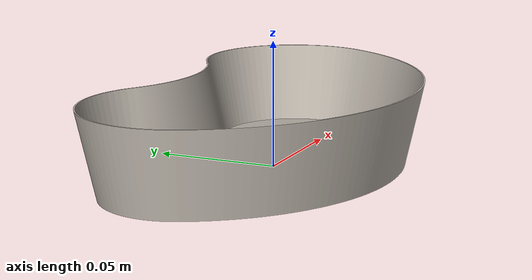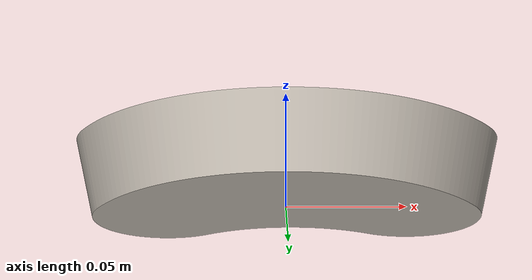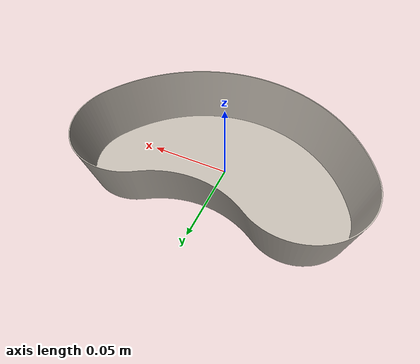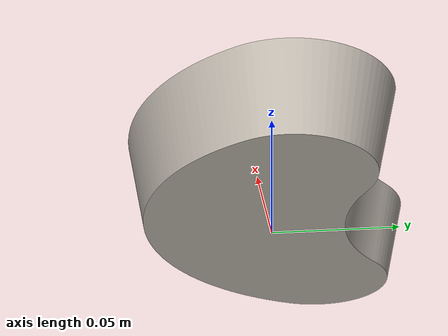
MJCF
<mujoco model="kidney_dish">

  <default>
    <default class="collision">
      <geom
        contype="1"
        conaffinity="1"
        group="5"
        mass="0"
        rgba="0 0 0 0"
        solref="0.01 1"
        solimp="0.95 0.99 0.0002 0.5 2"
      />
    </default>
  </default>

  <asset>
    <texture
      name="kidney_dish_steel_texture"
      type="2d"
      file="../textures/ambientcg/basecolor_256/Metal009_Color.png"
    />
    <material
      name="kidney_dish_steel"
      texture="kidney_dish_steel_texture"
      rgba="1 1 1 1"
      specular="0.3"
      shininess="0.25"
      reflectance="0.0"
      texrepeat="1 1"
      texuniform="false"
    />
    <mesh name="kidney_dish_mesh" file="meshes/kidney_dish.obj" />
  </asset>

  <worldbody>
    <body name="dish" mocap="true">
      <geom
        name="dish_visual"
        type="mesh"
        mesh="kidney_dish_mesh"
        material="kidney_dish_steel"
        group="0"
        contype="0"
        conaffinity="0"
        mass="0"
      />

      <!-- Wall: a closed ring leaning out at the flare angle. -->
      <geom name="dish_wall_00" class="collision" type="box"
            pos="-0.07609 -0.013335 0.0171" quat="0.876989 0.092175 -0.049294 -0.469003"
            size="0.014535 0.002 0.016869" />
      <geom name="dish_wall_01" class="collision" type="box"
            pos="-0.059046 -0.032421 0.0171" quat="0.933961 0.098163 -0.035919 -0.341746"
            size="0.014535 0.002 0.016869" />
      <geom name="dish_wall_02" class="collision" type="box"
            pos="-0.037382 -0.04604 0.0171" quat="0.972576 0.102222 -0.021838 -0.207772"
            size="0.014535 0.002 0.016869" />
      <geom name="dish_wall_03" class="collision" type="box"
            pos="-0.012794 -0.053127 0.0171" quat="0.992075 0.104271 -0.007327 -0.069714"
            size="0.014535 0.002 0.016869" />
      <geom name="dish_wall_04" class="collision" type="box"
            pos="0.012794 -0.053127 0.0171" quat="0.992075 0.104271 0.007327 0.069714"
            size="0.014535 0.002 0.016869" />
      <geom name="dish_wall_05" class="collision" type="box"
            pos="0.037382 -0.04604 0.0171" quat="0.972576 0.102222 0.021838 0.207772"
            size="0.014535 0.002 0.016869" />
      <geom name="dish_wall_06" class="collision" type="box"
            pos="0.059046 -0.032421 0.0171" quat="0.933961 0.098163 0.035919 0.341746"
            size="0.014535 0.002 0.016869" />
      <geom name="dish_wall_07" class="collision" type="box"
            pos="0.07609 -0.013335 0.0171" quat="0.876989 0.092175 0.049294 0.469003"
            size="0.014535 0.002 0.016869" />
      <geom name="dish_wall_08" class="collision" type="box"
            pos="0.084766 0.008748 0.0171" quat="0.745545 0.07836 0.06918 0.658207"
            size="0.01241 0.002 0.016869" />
      <geom name="dish_wall_09" class="collision" type="box"
            pos="0.080453 0.030048 0.0171" quat="0.497177 0.052255 0.090529 0.86133"
            size="0.01241 0.002 0.016869" />
      <geom name="dish_wall_10" class="collision" type="box"
            pos="0.064157 0.044427 0.0171" quat="0.197062 0.020712 0.102456 0.974803"
            size="0.01241 0.002 0.016869" />
      <geom name="dish_wall_11" class="collision" type="box"
            pos="0.042485 0.046054 0.0171" quat="-0.123564 -0.012987 0.103719 0.986816"
            size="0.01241 0.002 0.016869" />
      <geom name="dish_wall_12" class="collision" type="box"
            pos="0.027794 0.041144 0.0171" quat="-0.246781 -0.025938 0.101259 0.963417"
            size="0.004937 0.002 0.016869" />
      <geom name="dish_wall_13" class="collision" type="box"
            pos="0.02027 0.037695 0.0171" quat="-0.177182 -0.018623 0.102856 0.978611"
            size="0.004937 0.002 0.016869" />
      <geom name="dish_wall_14" class="collision" type="box"
            pos="0.012331 0.035355 0.0171" quat="-0.106674 -0.011212 0.103925 0.988784"
            size="0.004937 0.002 0.016869" />
      <geom name="dish_wall_15" class="collision" type="box"
            pos="0.004139 0.034173 0.0171" quat="-0.035619 -0.003744 0.104461 0.993884"
            size="0.004937 0.002 0.016869" />
      <geom name="dish_wall_16" class="collision" type="box"
            pos="-0.004139 0.034173 0.0171" quat="0.035619 0.003744 0.104461 0.993884"
            size="0.004937 0.002 0.016869" />
      <geom name="dish_wall_17" class="collision" type="box"
            pos="-0.012331 0.035355 0.0171" quat="0.106674 0.011212 0.103925 0.988784"
            size="0.004937 0.002 0.016869" />
      <geom name="dish_wall_18" class="collision" type="box"
            pos="-0.02027 0.037695 0.0171" quat="0.177182 0.018623 0.102856 0.978611"
            size="0.004937 0.002 0.016869" />
      <geom name="dish_wall_19" class="collision" type="box"
            pos="-0.027794 0.041144 0.0171" quat="0.246781 0.025938 0.101259 0.963417"
            size="0.004937 0.002 0.016869" />
      <geom name="dish_wall_20" class="collision" type="box"
            pos="-0.042485 0.046054 0.0171" quat="0.123564 0.012987 0.103719 0.986816"
            size="0.01241 0.002 0.016869" />
      <geom name="dish_wall_21" class="collision" type="box"
            pos="-0.064157 0.044427 0.0171" quat="-0.197062 -0.020712 0.102456 0.974803"
            size="0.01241 0.002 0.016869" />
      <geom name="dish_wall_22" class="collision" type="box"
            pos="-0.080453 0.030048 0.0171" quat="-0.497177 -0.052255 0.090529 0.86133"
            size="0.01241 0.002 0.016869" />
      <geom name="dish_wall_23" class="collision" type="box"
            pos="-0.084766 0.008748 0.0171" quat="0.745545 0.07836 -0.06918 -0.658207"
            size="0.01241 0.002 0.016869" />

      <!-- Basin floor. -->
      <geom name="dish_floor_00" class="collision" type="box"
            pos="-0.080764 0.012983 -0.0034"
            size="0.0005 0.00773 0.004" />
      <geom name="dish_floor_01" class="collision" type="box"
            pos="-0.078775 0.01293 -0.0034"
            size="0.001488 0.015104 0.004" />
      <geom name="dish_floor_02" class="collision" type="box"
            pos="-0.074847 0.011948 -0.0034"
            size="0.00244 0.022471 0.004" />
      <geom name="dish_floor_03" class="collision" type="box"
            pos="-0.069075 0.010084 -0.0034"
            size="0.003331 0.029381 0.004" />
      <geom name="dish_floor_04" class="collision" type="box"
            pos="-0.061603 0.00748 -0.0034"
            size="0.004141 0.035149 0.004" />
      <geom name="dish_floor_05" class="collision" type="box"
            pos="-0.052614 0.004129 -0.0034"
            size="0.004848 0.03921 0.004" />
      <geom name="dish_floor_06" class="collision" type="box"
            pos="-0.042329 0.001008 -0.0034"
            size="0.005436 0.042177 0.004" />
      <geom name="dish_floor_07" class="collision" type="box"
            pos="-0.031003 -0.002879 -0.0034"
            size="0.005891 0.042807 0.004" />
      <geom name="dish_floor_08" class="collision" type="box"
            pos="-0.018912 -0.00746 -0.0034"
            size="0.0062 0.041004 0.004" />
      <geom name="dish_floor_09" class="collision" type="box"
            pos="-0.006356 -0.009878 -0.0034"
            size="0.006356 0.03953 0.004" />
      <geom name="dish_floor_10" class="collision" type="box"
            pos="0.006356 -0.009878 -0.0034"
            size="0.006356 0.03953 0.004" />
      <geom name="dish_floor_11" class="collision" type="box"
            pos="0.018912 -0.00746 -0.0034"
            size="0.0062 0.041004 0.004" />
      <geom name="dish_floor_12" class="collision" type="box"
            pos="0.031003 -0.002879 -0.0034"
            size="0.005891 0.042807 0.004" />
      <geom name="dish_floor_13" class="collision" type="box"
            pos="0.042329 0.001008 -0.0034"
            size="0.005436 0.042177 0.004" />
      <geom name="dish_floor_14" class="collision" type="box"
            pos="0.052614 0.004129 -0.0034"
            size="0.004848 0.03921 0.004" />
      <geom name="dish_floor_15" class="collision" type="box"
            pos="0.061603 0.00748 -0.0034"
            size="0.004141 0.035149 0.004" />
      <geom name="dish_floor_16" class="collision" type="box"
            pos="0.069075 0.010084 -0.0034"
            size="0.003331 0.029381 0.004" />
      <geom name="dish_floor_17" class="collision" type="box"
            pos="0.074847 0.011948 -0.0034"
            size="0.00244 0.022471 0.004" />
      <geom name="dish_floor_18" class="collision" type="box"
            pos="0.078775 0.01293 -0.0034"
            size="0.001488 0.015104 0.004" />
      <geom name="dish_floor_19" class="collision" type="box"
            pos="0.080764 0.012983 -0.0034"
            size="0.0005 0.00773 0.004" />
    </body>
  </worldbody>
</mujoco>
